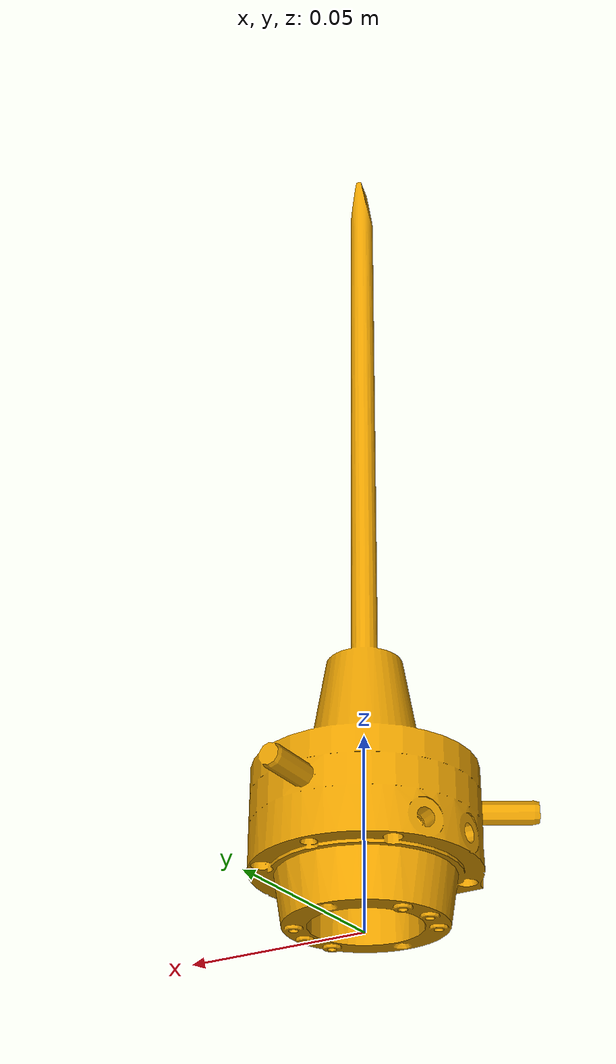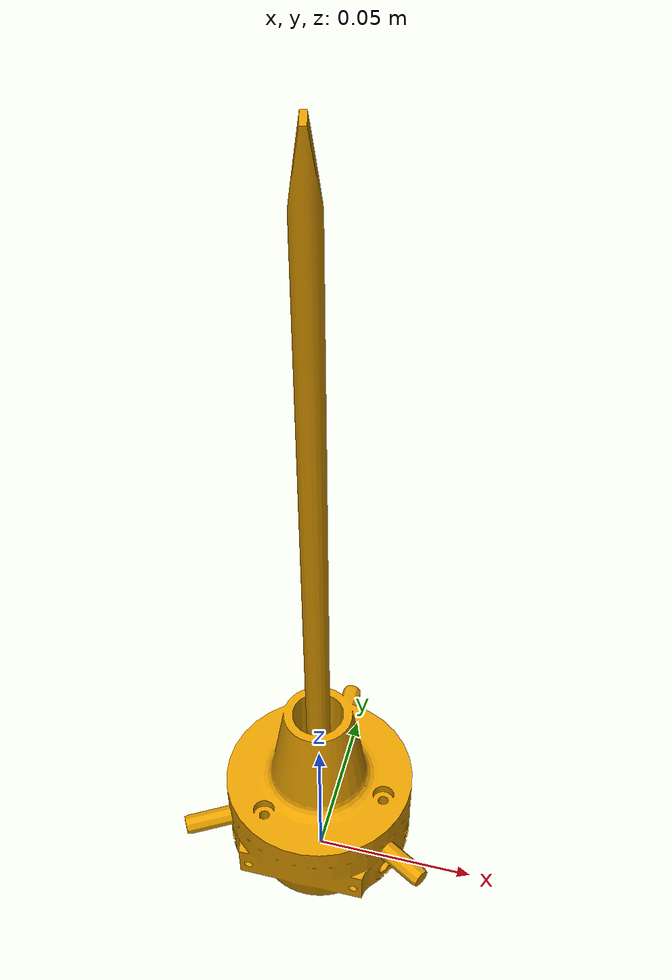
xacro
<?xml version='1.0'?>
<robot xmlns:xacro="http://www.ros.org/wiki/xacro" name="defaults">
    <xacro:arg name="screwdriver_id" default="screwdriver_panda_2"/>
    <link name="$(arg screwdriver_id">
        <visual>
            <origin rpy="1.57 0 0" xyz=" 0 0 0 "/>
            <geometry>
                <mesh filename="package://reconcycle_description/meshes/screwdriver.obj" scale="0.001 0.001 0.001"/>
            </geometry>
        </visual>
        <collision>
            <origin rpy="1.57 0 0" xyz="0.0 0.0 0"/>
            <geometry>
                <mesh filename="package://reconcycle_description/meshes/screwdriver.obj" scale ="0.001 0.001 0.001"/>
            </geometry>
        </collision>
        <inertial>
            <origin xyz="0 0 0" rpy="0 0 0"/>
            <mass value="3"/>
            <inertia ixx="3.0" ixy="0.0" ixz="0.0" iyy="3.0" iyz="0.0" izz="3.0"/>
        </inertial>
    </link>
</robot>
